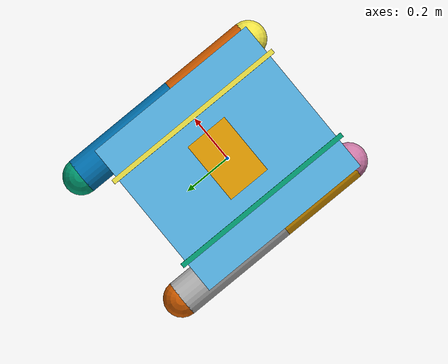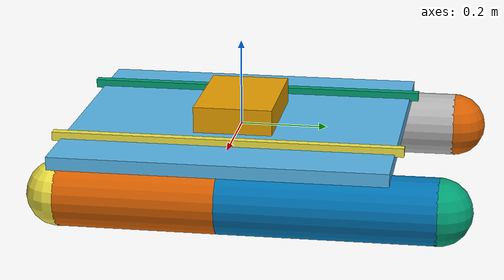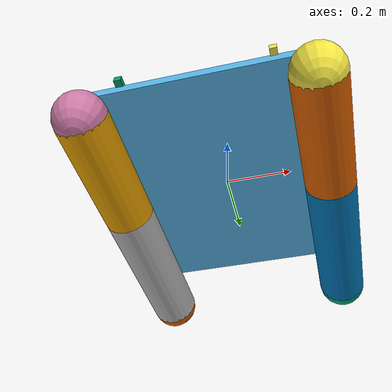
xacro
<?xml version="1.0"?>
<robot xmlns:xacro="http://ros.org/wiki/xacro"
       name="KINGFISHER">

  <!-- Kingfisher base -->
  <xacro:include filename="$(find kingfisher_description)/urdf/kingfisher_base.urdf.xacro" />

  <!-- ==== VMRC sensor configuration ==== -->
  <!-- Add NAVIO board -->
  <xacro:include filename="$(find kingfisher_description)/urdf/sensors/kingfisher_NAVIO.xacro" />
  <xacro:kingfisher_NAVIO name="NAVIO_kingfisher" x="0.034727" y="0.022524" z="${0.052-(0.00115/2)}" />

</robot>

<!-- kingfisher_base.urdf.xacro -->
<robot xmlns:xacro="http://ros.org/wiki/xacro" name="KINGFISHER">

  <xacro:include filename="$(find kingfisher_description)/urdf/parts/kingfisher_enclosure.urdf.xacro" />
  <xacro:include filename="$(find kingfisher_description)/urdf/kingfisher_float_mount.urdf.xacro" />

  <!-- Basic model of the 16' WAM-V USV -->
  <link name="base_link"> </link>

  <joint name="float_mount_joint" type="fixed">
    <origin xyz="0 0 0" rpy="3.14 0 3.14"/>
    <parent link="base_link"/>
    <child link="float_mount_link"/>
  </joint>

  <joint name="enclosure_joint" type="fixed">
    <origin xyz="0 0 0.0375" rpy="0 0 0"/>
    <parent link="base_link"/>
    <child link="enclosure_link"/>
  </joint>

</robot>

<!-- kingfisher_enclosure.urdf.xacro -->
<robot xmlns:xacro="http://ros.org/wiki/xacro">
    <link name="enclosure_link">
      <visual name="enclosure_visual">>
        <geometry>
          <box size="0.262 0.182 0.075" />
        </geometry>
      </visual>
    </link>
</robot>

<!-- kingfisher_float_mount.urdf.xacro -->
<robot xmlns:xacro="http://ros.org/wiki/xacro" name="KINGFISHER">

  <xacro:include filename="$(find kingfisher_description)/urdf/parts/kingfisher_rod.xacro" />
  <xacro:include filename="$(find kingfisher_description)/urdf/parts/kingfisher_float.xacro" />

  <link name="float_mount_link">
    <visual name="float_mount_visual">>
      <geometry>
        <box size="0.700 0.759 0.030" />
      </geometry>
    </visual>
    <collision name="float_collision">
      <origin xyz="0 0 ${0.18/2-0.03/2}" rpy="0 0 0"/>
        <geometry>
          <box size="0.8 1.2 0.18" />
        </geometry>
    </collision>
  </link>

  <xacro:kingfisher_rod name="left"/>
  <xacro:kingfisher_rod name="right"/>

  <xacro:kingfisher_float name="left"/>
  <xacro:kingfisher_float name="right"/>

  <joint name="left_rod_joint" type="fixed">
    <origin xyz="0.21 0 -0.02" rpy="0 0 0"/>
    <parent link="float_mount_link"/>
    <child link="left_rod"/>
  </joint>

  <joint name="right_rod_joint" type="fixed">
    <origin xyz="-0.21 0 -0.02" rpy="0 0 0"/>
    <parent link="float_mount_link"/>
    <child link="right_rod"/>
  </joint>

  <joint name="left_float_joint" type="fixed">
    <origin xyz="0.31 0 0.08" rpy="0 0 0"/>
    <parent link="float_mount_link"/>
    <child link="left_float"/>
  </joint>

  <joint name="right_float_joint" type="fixed">
    <origin xyz="-0.31 0 0.08" rpy="0 0 0"/>
    <parent link="float_mount_link"/>
    <child link="right_float"/>
  </joint>

</robot>

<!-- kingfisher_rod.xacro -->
<robot xmlns:xacro="http://ros.org/wiki/xacro">
  <xacro:macro name="kingfisher_rod" params="name:=rod">
    <link name="${name}_rod">
      <visual name="${name}_rod_visual">>
        <geometry>
          <box size="0.020 0.800 0.020" />
        </geometry>
      </visual>
      <collision name="${name}_rod_collision">
        <origin xyz="0 0 0" rpy="0 0 0"/>
          <geometry>
            <box size="0.020 0.800 0.020" />
          </geometry>
      </collision>
    </link>
  </xacro:macro>
</robot>

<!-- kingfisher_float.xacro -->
<robot xmlns:xacro="http://ros.org/wiki/xacro">
  <xacro:macro name="kingfisher_float" params="name:=float L_front:=0.200">
    <link name="${name}_float"> </link>

    <link name="${name}_float_front_end">
      <visual name="${name}_float_front_end_visual">>
        <geometry>
          <sphere radius="0.075"/>
        </geometry>
      </visual>
    </link>

    <link name="${name}_float_back_end">
      <visual name="${name}_float_back_end_visual">>
        <geometry>
          <sphere radius="0.075"/>
        </geometry>
      </visual>
    </link>

    <link name="${name}_float_front">
      <visual name="${name}_float_front_visual">>
        <geometry>
          <cylinder length="${0.360+L_front-0.075}" radius="0.075"/>
        </geometry>
      </visual>
    </link>

    <link name="${name}_float_back">
      <visual name="${name}_float_back_visual">>
        <geometry>
          <cylinder length="${0.360}" radius="0.075"/>
        </geometry>
      </visual>
    </link>

    <joint name="${name}_float_front_joint" type="fixed">
      <origin xyz="0 ${(0.360+L_front-0.075)/2} 0" rpy="1.57 0 0"/>
      <parent link="${name}_float"/>
      <child link="${name}_float_front"/>
    </joint>

    <joint name="${name}_float_front_end_joint" type="fixed">
      <origin xyz="0 ${0.360+L_front-0.075} 0" rpy="0 0 0"/>
      <parent link="${name}_float"/>
      <child link="${name}_float_front_end"/>
    </joint>

    <joint name="${name}_float_back_joint" type="fixed">
      <origin xyz="0 ${-0.360/2} 0" rpy="-1.57 0 0"/>
      <parent link="${name}_float"/>
      <child link="${name}_float_back"/>
    </joint>

    <joint name="${name}_float_back_end_joint" type="fixed">
      <origin xyz="0 ${-0.360} 0" rpy="0 0 0"/>
      <parent link="${name}_float"/>
      <child link="${name}_float_back_end"/>
    </joint>

  </xacro:macro>
</robot>

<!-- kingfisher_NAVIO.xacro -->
<robot xmlns:xacro="http://ros.org/wiki/xacro">
  <xacro:macro name="kingfisher_NAVIO" params="name:=NAVIO x:=0 y:=0 z:=1.3 R:=0 P:=0 Y:=0">
    <link name="${name}_link">
      <visual name="${name}_visual">>
        <geometry>
          <box size="0.0564 0.065 0.00115" />
        </geometry>
        <material name="${name}_visual_material">
          <color rgba="1.0 0.0 00 1.0" />
        </material>
      </visual>
    </link>
    <joint name="${name}_joint" type="fixed">
      <origin xyz="${x} ${y} ${z}" rpy="${R} ${P} ${Y}"/>
      <parent link="base_link"/>
      <child link="${name}_link"/>
    </joint>
  </xacro:macro>
</robot>
